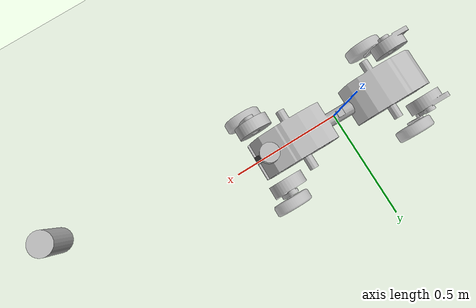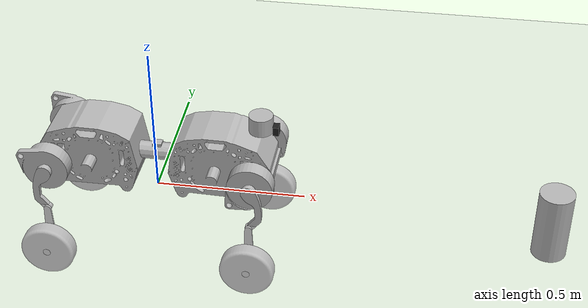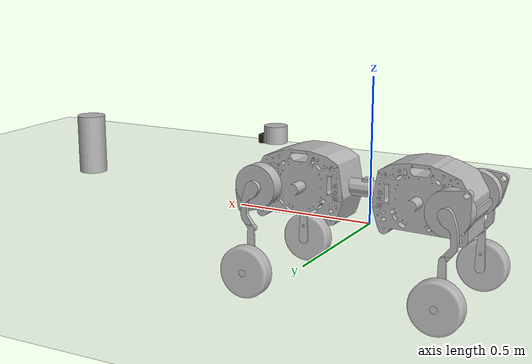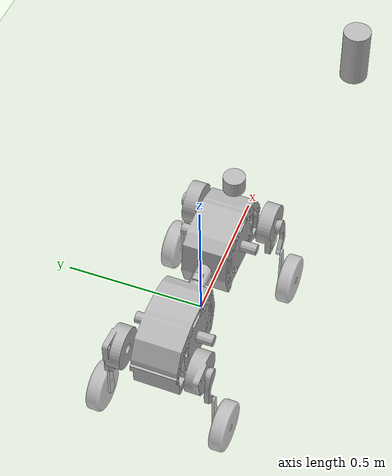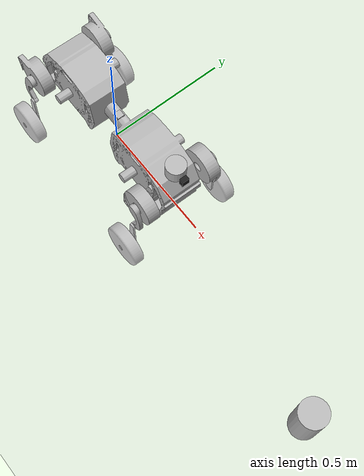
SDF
<sdf version="1.7">
 <world name="default">
  <light name="sun" type="directional">
   <pose>0 0 10 0 -0 0</pose>
   <diffuse>0.8 0.8 0.8 1</diffuse>
   <specular>0.2 0.2 0.2 1</specular>
   <attenuation>
    <range>1000</range>
    <constant>0.9</constant>
    <linear>0.01</linear>
    <quadratic>0.001</quadratic>
   </attenuation>
   <direction>-0.5 0.1 -0.9</direction>
   <spot><inner_angle>0</inner_angle><outer_angle>0</outer_angle><falloff>0</falloff></spot>
  </light>
  <model name="ground_plane">
   <static>1</static>
   <link name="link">
    <collision name="collision">
     <geometry><plane><normal>0 0 1</normal><size>100 100</size></plane></geometry>
     <surface><friction><ode><mu>100</mu><mu2>50</mu2></ode></friction></surface>
    </collision>
    <visual name="visual">
     <cast_shadows>0</cast_shadows>
     <geometry><plane><normal>0 0 1</normal><size>100 100</size></plane></geometry>
     <material>
      <script><uri>file://media/materials/scripts/gazebo.material</uri><name>Gazebo/Grey</name></script>
     </material>
    </visual>
   </link>
  </model>
  <gravity>0 0 -9.8</gravity>
  <magnetic_field>6e-06 2.3e-05 -4.2e-05</magnetic_field>
  <atmosphere type="adiabatic"/>
  <physics type="ode">
   <max_step_size>0.001</max_step_size>
   <real_time_factor>1</real_time_factor>
   <real_time_update_rate>1000</real_time_update_rate>
  </physics>
  <scene><ambient>0.4 0.4 0.4 1</ambient><background>0.7 0.7 0.7 1</background><shadows>1</shadows></scene>
  <spherical_coordinates>
   <surface_model>EARTH_WGS84</surface_model>
   <latitude_deg>0</latitude_deg>
   <longitude_deg>0</longitude_deg>
   <elevation>0</elevation>
   <heading_deg>0</heading_deg>
  </spherical_coordinates>
  <model name="xingtian">
   <link name="dummy">
    <inertial>
     <pose>-6e-06 0 0.000503 0 -0 0</pose>
     <mass>17.0493</mass>
     <inertia>
      <ixx>0.118823</ixx>
      <ixy>3.25903e-06</ixy>
      <ixz>-1.50677e-05</ixz>
      <iyy>2.09523</iyy>
      <iyz>-8.25373e-09</iyz>
      <izz>2.0615</izz>
     </inertia>
    </inertial>
    <collision name="dummy_fixed_joint_lump__base_link_collision">
     <geometry>
      <mesh>
       <scale>1 1 1</scale>
       <uri>/home/zyz/robot_leg/demo_xingtian_ws/src/xingtian/meshes/base_link.STL</uri>
      </mesh>
     </geometry>
    </collision>
    <collision name="dummy_fixed_joint_lump__imu_link_collision_1">
     <pose>0 0 0.03503 0 -0 0</pose>
     <geometry>
      <mesh>
       <scale>1 1 1</scale>
       <uri>/home/zyz/robot_leg/demo_xingtian_ws/src/xingtian/meshes/imu_link.STL</uri>
      </mesh>
     </geometry>
    </collision>
    <visual name="dummy_fixed_joint_lump__base_link_visual">
     <geometry>
      <mesh>
       <scale>1 1 1</scale>
       <uri>/home/zyz/robot_leg/demo_xingtian_ws/src/xingtian/meshes/base_link.STL</uri>
      </mesh>
     </geometry>
     <material>
      <script><name>Gazebo/DarkGery</name><uri>file://media/materials/scripts/gazebo.material</uri></script>
     </material>
    </visual>
    <visual name="dummy_fixed_joint_lump__camera_link_visual_1">
     <pose>0.4 0 0.13 0 -0 0</pose>
     <geometry><box><size>0.02 0.03 0.03</size></box></geometry>
     <material>
      <script><name>Gazebo/Black</name><uri>file://media/materials/scripts/gazebo.material</uri></script>
     </material>
    </visual>
    <visual name="dummy_fixed_joint_lump__imu_link_visual_2">
     <pose>0 0 0.03503 0 -0 0</pose>
     <geometry>
      <mesh>
       <scale>1 1 1</scale>
       <uri>/home/zyz/robot_leg/demo_xingtian_ws/src/xingtian/meshes/imu_link.STL</uri>
      </mesh>
     </geometry>
    </visual>
    <visual name="dummy_fixed_joint_lump__laser_link_visual_3">
     <pose>0.35 0 0.15 0 -0 0</pose>
     <geometry><cylinder><length>0.06</length><radius>0.04</radius></cylinder></geometry>
    </visual>
    <sensor name="camera1" type="camera">
     <update_rate>30</update_rate>
     <camera name="head">
      <horizontal_fov>1.39626</horizontal_fov>
      <image><width>800</width><height>800</height><format>R8G8B8</format></image>
      <clip><near>0.02</near><far>300</far></clip>
      <noise><type>gaussian</type><mean>0</mean><stddev>0.007</stddev></noise>
     </camera>
     <plugin name="camera_controller" filename="/opt/ros/noetic/lib/libgazebo_ros_camera.so">
      <alwaysOn>1</alwaysOn>
      <updateRate>0.0</updateRate>
      <cameraName>xingtian/camera1</cameraName>
      <imageTopicName>image_raw</imageTopicName>
      <cameraInfoTopicName>camera_info</cameraInfoTopicName>
      <frameName>camera_link</frameName>
      <hackBaseline>0.07</hackBaseline>
      <distortionK1>0.0</distortionK1>
      <distortionK2>0.0</distortionK2>
      <distortionK3>0.0</distortionK3>
      <distortionT1>0.0</distortionT1>
      <distortionT2>0.0</distortionT2>
      <robotNamespace>/</robotNamespace>
     </plugin>
     <pose>0.4 0 0.13 0 -0 0</pose>
    </sensor>
    <sensor name="imu_sensor" type="imu">
     <always_on>1</always_on>
     <update_rate>100</update_rate>
     <visualize>1</visualize>
     <topic>__default_topic__</topic>
     <plugin name="imu_plugin" filename="/opt/ros/noetic/lib/libgazebo_ros_imu_sensor.so">
      <topicName>imu</topicName>
      <bodyName>imu_link</bodyName>
      <updateRateHZ>10.0</updateRateHZ>
      <gaussianNoise>0.0</gaussianNoise>
      <xyzOffset>0 0 0</xyzOffset>
      <rpyOffset>0 0 0</rpyOffset>
      <frameName>imu_link</frameName>
      <initialOrientationAsReference>0</initialOrientationAsReference>
      <robotNamespace>/</robotNamespace>
     </plugin>
     <pose>0 0 0.03503 0 -0 0</pose>
    </sensor>
    <sensor name="head_hokuyo_sensor" type="gpu_ray">
     <visualize>0</visualize>
     <update_rate>40</update_rate>
     <ray>
      <scan>
       <horizontal>
        <samples>720</samples>
        <resolution>1</resolution>
        <min_angle>-1.5708</min_angle>
        <max_angle>1.5708</max_angle>
       </horizontal>
       <vertical><samples>1</samples><min_angle>0</min_angle><max_angle>0</max_angle></vertical>
      </scan>
      <range><min>0.1</min><max>30</max><resolution>0.01</resolution></range>
      <noise><type>gaussian</type><mean>0</mean><stddev>0.01</stddev></noise>
     </ray>
     <plugin name="gazebo_ros_head_hokuyo_controller" filename="libgazebo_ros_gpu_laser.so">
      <topicName>/xingtian/laser/scan</topicName>
      <frameName>hokuyo_link</frameName>
      <robotNamespace>/</robotNamespace>
     </plugin>
     <pose>0.35 0 0.15 0 -0 0</pose>
    </sensor>
   </link>
   <joint name="yht_joint4" type="revolute">
    <pose relative_to="dummy">-0.33864 -0.0825 -0.000883 0 -0 0</pose>
    <parent>dummy</parent>
    <child>yht_yao</child>
    <axis>
     <xyz>0 -1 0</xyz>
     <limit><lower>-3.14</lower><upper>3.14</upper><effort>20000</effort><velocity>3</velocity></limit>
     <dynamics><spring_reference>0</spring_reference><spring_stiffness>0</spring_stiffness></dynamics>
    </axis>
   </joint>
   <link name="yht_yao">
    <pose relative_to="yht_joint4">0 0 0 0 -0 0</pose>
    <inertial>
     <pose>-0.00194 -0.05851 0.001335 0 -0 0</pose>
     <mass>2.36316</mass>
     <inertia>
      <ixx>0.00418063</ixx>
      <ixy>-9.39193e-05</ixy>
      <ixz>0.00019498</ixz>
      <iyy>0.00741887</iyy>
      <iyz>6.4645e-05</iyz>
      <izz>0.00432962</izz>
     </inertia>
    </inertial>
    <collision name="yht_yao_collision">
     <geometry>
      <mesh>
       <scale>1 1 1</scale>
       <uri>/home/zyz/robot_leg/demo_xingtian_ws/src/xingtian/meshes/yht_yao.STL</uri>
      </mesh>
     </geometry>
     <surface>
      <contact><ode><kp>500000</kp><kd>10</kd><max_vel>1</max_vel><min_depth>0.001</min_depth></ode></contact>
      <friction><ode><mu>0.5</mu><mu2>0.5</mu2><fdir1>1 0 0</fdir1></ode></friction>
     </surface>
    </collision>
    <visual name="yht_yao_visual">
     <geometry>
      <mesh>
       <scale>1 1 1</scale>
       <uri>/home/zyz/robot_leg/demo_xingtian_ws/src/xingtian/meshes/yht_yao.STL</uri>
      </mesh>
     </geometry>
    </visual>
   </link>
   <joint name="yht_joint3" type="revolute">
    <pose relative_to="yht_yao">0 -0.105 0 0 -0 0</pose>
    <parent>yht_yao</parent>
    <child>yht_qubing</child>
    <axis>
     <xyz>0 1 0</xyz>
     <limit><lower>-3.14</lower><upper>3.14</upper><effort>20000</effort><velocity>3</velocity></limit>
     <dynamics><spring_reference>0</spring_reference><spring_stiffness>0</spring_stiffness></dynamics>
    </axis>
   </joint>
   <link name="yht_qubing">
    <pose relative_to="yht_joint3">0 0 0 0 -0 0</pose>
    <inertial>
     <pose>-0.00989 0.015219 -0.034594 0 -0 0</pose>
     <mass>0.343012</mass>
     <inertia>
      <ixx>0.000830322</ixx>
      <ixy>-2.44911e-05</ixy>
      <ixz>-0.000124823</ixz>
      <iyy>0.000866213</iyy>
      <iyz>-8.56665e-05</iyz>
      <izz>0.000143539</izz>
     </inertia>
    </inertial>
    <collision name="yht_qubing_collision">
     <geometry>
      <mesh>
       <scale>1 1 1</scale>
       <uri>/home/zyz/robot_leg/demo_xingtian_ws/src/xingtian/meshes/yht_qubing.STL</uri>
      </mesh>
     </geometry>
     <surface>
      <contact><ode><kp>500000</kp><kd>10</kd><max_vel>1</max_vel><min_depth>0.001</min_depth></ode></contact>
      <friction><ode><mu>0.5</mu><mu2>0.5</mu2><fdir1>1 0 0</fdir1></ode></friction>
     </surface>
    </collision>
    <visual name="yht_qubing_visual">
     <geometry>
      <mesh>
       <scale>1 1 1</scale>
       <uri>/home/zyz/robot_leg/demo_xingtian_ws/src/xingtian/meshes/yht_qubing.STL</uri>
      </mesh>
     </geometry>
    </visual>
   </link>
   <joint name="yht_joint2" type="revolute">
    <pose relative_to="yht_qubing">0 0.016 -0.14 0 -0 0</pose>
    <parent>yht_qubing</parent>
    <child>yht_dianjizhou</child>
    <axis>
     <xyz>0 1 0</xyz>
     <limit><lower>-3.14</lower><upper>3.14</upper><effort>20000</effort><velocity>3</velocity></limit>
     <dynamics><spring_reference>0</spring_reference><spring_stiffness>0</spring_stiffness></dynamics>
    </axis>
   </joint>
   <link name="yht_dianjizhou">
    <pose relative_to="yht_joint2">0 0 0 0 -0 0</pose>
    <inertial>
     <pose>-0 -0.033337 -0.101527 0 -0 0</pose>
     <mass>0.0711999</mass>
     <inertia>
      <ixx>0.000208257</ixx>
      <ixy>-1.80301e-10</ixy>
      <ixz>-7.68244e-10</ixz>
      <iyy>0.000184278</iyy>
      <iyz>-4.12845e-05</iyz>
      <izz>3.23489e-05</izz>
     </inertia>
    </inertial>
    <collision name="yht_dianjizhou_collision">
     <geometry>
      <mesh>
       <scale>1 1 1</scale>
       <uri>/home/zyz/robot_leg/demo_xingtian_ws/src/xingtian/meshes/yht_dianjizhou.STL</uri>
      </mesh>
     </geometry>
     <surface>
      <contact><ode><kp>500000</kp><kd>10</kd><max_vel>1</max_vel><min_depth>0.001</min_depth></ode></contact>
      <friction><ode><mu>0.5</mu><mu2>0.5</mu2><fdir1>1 0 0</fdir1></ode></friction>
     </surface>
    </collision>
    <visual name="yht_dianjizhou_visual">
     <geometry>
      <mesh>
       <scale>1 1 1</scale>
       <uri>/home/zyz/robot_leg/demo_xingtian_ws/src/xingtian/meshes/yht_dianjizhou.STL</uri>
      </mesh>
     </geometry>
    </visual>
   </link>
   <joint name="yht_joint1" type="revolute">
    <pose relative_to="yht_dianjizhou">0 -0.029 -0.14 0 -0 0</pose>
    <parent>yht_dianjizhou</parent>
    <child>yht_wheel</child>
    <axis>
     <xyz>0 1 0</xyz>
     <limit><lower>-1e+16</lower><upper>1e+16</upper></limit>
     <dynamics><spring_reference>0</spring_reference><spring_stiffness>0</spring_stiffness></dynamics>
    </axis>
   </joint>
   <link name="yht_wheel">
    <pose relative_to="yht_joint1">0 0 0 0 -0 0</pose>
    <inertial>
     <pose>0 -0.026 0 0 -0 0</pose>
     <mass>3.44066</mass>
     <inertia>
      <ixx>0.00775154</ixx>
      <ixy>6.89009e-18</ixy>
      <ixz>4.30388e-19</ixz>
      <iyy>0.0139963</iyy>
      <iyz>-1.77602e-18</iyz>
      <izz>0.00775154</izz>
     </inertia>
    </inertial>
    <collision name="yht_wheel_collision">
     <geometry>
      <mesh>
       <scale>1 1 1</scale>
       <uri>/home/zyz/robot_leg/demo_xingtian_ws/src/xingtian/meshes/yht_wheel.STL</uri>
      </mesh>
     </geometry>
     <surface>
      <contact><ode><kp>500000</kp><kd>10</kd><max_vel>2</max_vel><min_depth>0.001</min_depth></ode></contact>
      <friction><ode><mu>0.5</mu><mu2>0.5</mu2><fdir1>1 0 0</fdir1></ode></friction>
     </surface>
    </collision>
    <visual name="yht_wheel_visual">
     <geometry>
      <mesh>
       <scale>1 1 1</scale>
       <uri>/home/zyz/robot_leg/demo_xingtian_ws/src/xingtian/meshes/yht_wheel.STL</uri>
      </mesh>
     </geometry>
    </visual>
   </link>
   <joint name="yqt_joint4" type="revolute">
    <pose relative_to="dummy">0.33864 -0.0825 -0.000883 0 -0 0</pose>
    <parent>dummy</parent>
    <child>yqt_yao</child>
    <axis>
     <xyz>0 -1 0</xyz>
     <limit><lower>-3.14</lower><upper>3.14</upper><effort>20000</effort><velocity>3</velocity></limit>
     <dynamics><spring_reference>0</spring_reference><spring_stiffness>0</spring_stiffness></dynamics>
    </axis>
   </joint>
   <link name="yqt_yao">
    <pose relative_to="yqt_joint4">0 0 0 0 -0 0</pose>
    <inertial>
     <pose>-0.00168 -0.05851 -0.00165 0 -0 0</pose>
     <mass>2.36316</mass>
     <inertia>
      <ixx>0.00425129</ixx>
      <ixy>-8.13523e-05</ixy>
      <ixz>-0.000208692</ixz>
      <iyy>0.00741887</iyy>
      <iyz>-7.9885e-05</iyz>
      <izz>0.00425896</izz>
     </inertia>
    </inertial>
    <collision name="yqt_yao_collision">
     <geometry>
      <mesh>
       <scale>1 1 1</scale>
       <uri>/home/zyz/robot_leg/demo_xingtian_ws/src/xingtian/meshes/yqt_yao.STL</uri>
      </mesh>
     </geometry>
     <surface>
      <contact><ode><kp>500000</kp><kd>10</kd><max_vel>1</max_vel><min_depth>0.001</min_depth></ode></contact>
      <friction><ode><mu>0.5</mu><mu2>0.5</mu2><fdir1>1 0 0</fdir1></ode></friction>
     </surface>
    </collision>
    <visual name="yqt_yao_visual">
     <geometry>
      <mesh>
       <scale>1 1 1</scale>
       <uri>/home/zyz/robot_leg/demo_xingtian_ws/src/xingtian/meshes/yqt_yao.STL</uri>
      </mesh>
     </geometry>
    </visual>
   </link>
   <joint name="yqt_joint3" type="revolute">
    <pose relative_to="yqt_yao">0 -0.105 0 0 -0 0</pose>
    <parent>yqt_yao</parent>
    <child>yqt_qubing</child>
    <axis>
     <xyz>0 1 0</xyz>
     <limit><lower>-3.14</lower><upper>3.14</upper><effort>20000</effort><velocity>3</velocity></limit>
     <dynamics><spring_reference>0</spring_reference><spring_stiffness>0</spring_stiffness></dynamics>
    </axis>
   </joint>
   <link name="yqt_qubing">
    <pose relative_to="yqt_joint3">0 0 0 0 -0 0</pose>
    <inertial>
     <pose>0.00989 0.015219 -0.034594 0 -0 0</pose>
     <mass>0.343012</mass>
     <inertia>
      <ixx>0.000830323</ixx>
      <ixy>2.44907e-05</ixy>
      <ixz>0.00012482</ixz>
      <iyy>0.000866213</iyy>
      <iyz>-8.56666e-05</iyz>
      <izz>0.000143538</izz>
     </inertia>
    </inertial>
    <collision name="yqt_qubing_collision">
     <geometry>
      <mesh>
       <scale>1 1 1</scale>
       <uri>/home/zyz/robot_leg/demo_xingtian_ws/src/xingtian/meshes/yqt_qubing.STL</uri>
      </mesh>
     </geometry>
     <surface>
      <contact><ode><kp>500000</kp><kd>10</kd><max_vel>1</max_vel><min_depth>0.001</min_depth></ode></contact>
      <friction><ode><mu>0.5</mu><mu2>0.5</mu2><fdir1>1 0 0</fdir1></ode></friction>
     </surface>
    </collision>
    <visual name="yqt_qubing_visual">
     <geometry>
      <mesh>
       <scale>1 1 1</scale>
       <uri>/home/zyz/robot_leg/demo_xingtian_ws/src/xingtian/meshes/yqt_qubing.STL</uri>
      </mesh>
     </geometry>
    </visual>
   </link>
   <joint name="yqt_joint2" type="revolute">
    <pose relative_to="yqt_qubing">0 0.016 -0.14 0 -0 0</pose>
    <parent>yqt_qubing</parent>
    <child>yqt_dianjizhou</child>
    <axis>
     <xyz>0 1 0</xyz>
     <limit><lower>-3.14</lower><upper>3.14</upper><effort>20000</effort><velocity>3</velocity></limit>
     <dynamics><spring_reference>0</spring_reference><spring_stiffness>0</spring_stiffness></dynamics>
    </axis>
   </joint>
   <link name="yqt_dianjizhou">
    <pose relative_to="yqt_joint2">0 0 0 0 -0 0</pose>
    <inertial>
     <pose>0 -0.033337 -0.101527 0 -0 0</pose>
     <mass>0.0711999</mass>
     <inertia>
      <ixx>0.000208257</ixx>
      <ixy>9.53214e-12</ixy>
      <ixz>4.06154e-11</ixz>
      <iyy>0.000184278</iyy>
      <iyz>-4.12845e-05</iyz>
      <izz>3.23489e-05</izz>
     </inertia>
    </inertial>
    <collision name="yqt_dianjizhou_collision">
     <geometry>
      <mesh>
       <scale>1 1 1</scale>
       <uri>/home/zyz/robot_leg/demo_xingtian_ws/src/xingtian/meshes/yqt_dianjizhou.STL</uri>
      </mesh>
     </geometry>
     <surface>
      <contact><ode><kp>500000</kp><kd>10</kd><max_vel>1</max_vel><min_depth>0.001</min_depth></ode></contact>
      <friction><ode><mu>0.5</mu><mu2>0.5</mu2><fdir1>1 0 0</fdir1></ode></friction>
     </surface>
    </collision>
    <visual name="yqt_dianjizhou_visual">
     <geometry>
      <mesh>
       <scale>1 1 1</scale>
       <uri>/home/zyz/robot_leg/demo_xingtian_ws/src/xingtian/meshes/yqt_dianjizhou.STL</uri>
      </mesh>
     </geometry>
    </visual>
   </link>
   <joint name="yqt_joint1" type="revolute">
    <pose relative_to="yqt_dianjizhou">0 -0.029 -0.14 0 -0 0</pose>
    <parent>yqt_dianjizhou</parent>
    <child>yqt_wheel</child>
    <axis>
     <xyz>0 1 0</xyz>
     <limit><lower>-1e+16</lower><upper>1e+16</upper></limit>
     <dynamics><spring_reference>0</spring_reference><spring_stiffness>0</spring_stiffness></dynamics>
    </axis>
   </joint>
   <link name="yqt_wheel">
    <pose relative_to="yqt_joint1">0 0 0 0 -0 0</pose>
    <inertial>
     <pose>0 -0.026 0 0 -0 0</pose>
     <mass>3.44066</mass>
     <inertia>
      <ixx>0.00775154</ixx>
      <ixy>-8.07781e-19</ixy>
      <ixz>-8.66148e-19</ixz>
      <iyy>0.0139963</iyy>
      <iyz>9.19191e-19</iyz>
      <izz>0.00775154</izz>
     </inertia>
    </inertial>
    <collision name="yqt_wheel_collision">
     <geometry>
      <mesh>
       <scale>1 1 1</scale>
       <uri>/home/zyz/robot_leg/demo_xingtian_ws/src/xingtian/meshes/yqt_wheel.STL</uri>
      </mesh>
     </geometry>
     <surface>
      <contact><ode><kp>500000</kp><kd>10</kd><max_vel>2</max_vel><min_depth>0.001</min_depth></ode></contact>
      <friction><ode><mu>0.5</mu><mu2>0.5</mu2><fdir1>1 0 0</fdir1></ode></friction>
     </surface>
    </collision>
    <visual name="yqt_wheel_visual">
     <geometry>
      <mesh>
       <scale>1 1 1</scale>
       <uri>/home/zyz/robot_leg/demo_xingtian_ws/src/xingtian/meshes/yqt_wheel.STL</uri>
      </mesh>
     </geometry>
    </visual>
   </link>
   <joint name="zht_joint4" type="revolute">
    <pose relative_to="dummy">-0.33864 0.0825 -0.000883 0 -0 0</pose>
    <parent>dummy</parent>
    <child>zht_yao</child>
    <axis>
     <xyz>0 1 0</xyz>
     <limit><lower>-3.14</lower><upper>3.14</upper><effort>200000</effort><velocity>3</velocity></limit>
     <dynamics><spring_reference>0</spring_reference><spring_stiffness>0</spring_stiffness></dynamics>
    </axis>
   </joint>
   <link name="zht_yao">
    <pose relative_to="zht_joint4">0 0 0 0 -0 0</pose>
    <inertial>
     <pose>-0.001558 0.05851 0.001766 0 -0 0</pose>
     <mass>2.36316</mass>
     <inertia>
      <ixx>0.00428106</ixx>
      <ixy>7.54397e-05</ixy>
      <ixz>0.00020711</ixz>
      <iyy>0.00741887</iyy>
      <iyz>-8.54907e-05</iyz>
      <izz>0.00422919</izz>
     </inertia>
    </inertial>
    <collision name="zht_yao_collision">
     <geometry>
      <mesh>
       <scale>1 1 1</scale>
       <uri>/home/zyz/robot_leg/demo_xingtian_ws/src/xingtian/meshes/zht_yao.STL</uri>
      </mesh>
     </geometry>
     <surface>
      <contact><ode><kp>500000</kp><kd>10</kd><max_vel>1</max_vel><min_depth>0.001</min_depth></ode></contact>
      <friction><ode><mu>0.5</mu><mu2>0.5</mu2><fdir1>1 0 0</fdir1></ode></friction>
     </surface>
    </collision>
    <visual name="zht_yao_visual">
     <geometry>
      <mesh>
       <scale>1 1 1</scale>
       <uri>/home/zyz/robot_leg/demo_xingtian_ws/src/xingtian/meshes/zht_yao.STL</uri>
      </mesh>
     </geometry>
    </visual>
   </link>
   <joint name="zht_joint3" type="revolute">
    <pose relative_to="zht_yao">0 0.105 0 0 -0 0</pose>
    <parent>zht_yao</parent>
    <child>zht_qubing</child>
    <axis>
     <xyz>0 1 0</xyz>
     <limit><lower>-3.14</lower><upper>3.14</upper><effort>200000</effort><velocity>3</velocity></limit>
     <dynamics><spring_reference>0</spring_reference><spring_stiffness>0</spring_stiffness></dynamics>
    </axis>
   </joint>
   <link name="zht_qubing">
    <pose relative_to="zht_joint3">0 0 0 0 -0 0</pose>
    <inertial>
     <pose>-0.00989 -0.015219 -0.034594 0 -0 0</pose>
     <mass>0.343012</mass>
     <inertia>
      <ixx>0.000830323</ixx>
      <ixy>2.44907e-05</ixy>
      <ixz>-0.00012482</ixz>
      <iyy>0.000866213</iyy>
      <iyz>8.56666e-05</iyz>
      <izz>0.000143538</izz>
     </inertia>
    </inertial>
    <collision name="zht_qubing_collision">
     <geometry>
      <mesh>
       <scale>1 1 1</scale>
       <uri>/home/zyz/robot_leg/demo_xingtian_ws/src/xingtian/meshes/zht_qubing.STL</uri>
      </mesh>
     </geometry>
     <surface>
      <contact><ode><kp>500000</kp><kd>10</kd><max_vel>1</max_vel><min_depth>0.001</min_depth></ode></contact>
      <friction><ode><mu>0.5</mu><mu2>0.5</mu2><fdir1>1 0 0</fdir1></ode></friction>
     </surface>
    </collision>
    <visual name="zht_qubing_visual">
     <geometry>
      <mesh>
       <scale>1 1 1</scale>
       <uri>/home/zyz/robot_leg/demo_xingtian_ws/src/xingtian/meshes/zht_qubing.STL</uri>
      </mesh>
     </geometry>
    </visual>
   </link>
   <joint name="zht_joint2" type="revolute">
    <pose relative_to="zht_qubing">0 -0.016 -0.14 0 -0 0</pose>
    <parent>zht_qubing</parent>
    <child>zht_dianjizhou</child>
    <axis>
     <xyz>0 1 0</xyz>
     <limit><lower>-3.14</lower><upper>3.14</upper><effort>200000</effort><velocity>3</velocity></limit>
     <dynamics><spring_reference>0</spring_reference><spring_stiffness>0</spring_stiffness></dynamics>
    </axis>
   </joint>
   <link name="zht_dianjizhou">
    <pose relative_to="zht_joint2">0 0 0 0 -0 0</pose>
    <inertial>
     <pose>-0 0.033337 -0.101527 0 -0 0</pose>
     <mass>0.0711999</mass>
     <inertia>
      <ixx>0.000208257</ixx>
      <ixy>9.53214e-12</ixy>
      <ixz>-4.06154e-11</ixz>
      <iyy>0.000184278</iyy>
      <iyz>4.12845e-05</iyz>
      <izz>3.23489e-05</izz>
     </inertia>
    </inertial>
    <collision name="zht_dianjizhou_collision">
     <geometry>
      <mesh>
       <scale>1 1 1</scale>
       <uri>/home/zyz/robot_leg/demo_xingtian_ws/src/xingtian/meshes/zht_dianjizhou.STL</uri>
      </mesh>
     </geometry>
     <surface>
      <contact><ode><kp>500000</kp><kd>10</kd><max_vel>1</max_vel><min_depth>0.001</min_depth></ode></contact>
      <friction><ode><mu>0.5</mu><mu2>0.5</mu2><fdir1>1 0 0</fdir1></ode></friction>
     </surface>
    </collision>
    <visual name="zht_dianjizhou_visual">
     <geometry>
      <mesh>
       <scale>1 1 1</scale>
       <uri>/home/zyz/robot_leg/demo_xingtian_ws/src/xingtian/meshes/zht_dianjizhou.STL</uri>
      </mesh>
     </geometry>
    </visual>
   </link>
   <joint name="zht_joint1" type="revolute">
    <pose relative_to="zht_dianjizhou">0 0.029 -0.14 0 -0 0</pose>
    <parent>zht_dianjizhou</parent>
    <child>zht_wheel</child>
    <axis>
     <xyz>0 -1 0</xyz>
     <limit><lower>-1e+16</lower><upper>1e+16</upper></limit>
     <dynamics><spring_reference>0</spring_reference><spring_stiffness>0</spring_stiffness></dynamics>
    </axis>
   </joint>
   <link name="zht_wheel">
    <pose relative_to="zht_joint1">0 0 0 0 -0 0</pose>
    <inertial>
     <pose>0 0.026 -0 0 -0 0</pose>
     <mass>3.44066</mass>
     <inertia>
      <ixx>0.00775154</ixx>
      <ixy>-7.1051e-18</ixy>
      <ixz>-4.99165e-19</ixz>
      <iyy>0.0139963</iyy>
      <iyz>3.5744e-18</iyz>
      <izz>0.00775154</izz>
     </inertia>
    </inertial>
    <collision name="zht_wheel_collision">
     <geometry>
      <mesh>
       <scale>1 1 1</scale>
       <uri>/home/zyz/robot_leg/demo_xingtian_ws/src/xingtian/meshes/zht_wheel.STL</uri>
      </mesh>
     </geometry>
     <surface>
      <contact><ode><kp>500000</kp><kd>10</kd><max_vel>2</max_vel><min_depth>0.001</min_depth></ode></contact>
      <friction><ode><mu>0.5</mu><mu2>0.5</mu2><fdir1>1 0 0</fdir1></ode></friction>
     </surface>
    </collision>
    <visual name="zht_wheel_visual">
     <geometry>
      <mesh>
       <scale>1 1 1</scale>
       <uri>/home/zyz/robot_leg/demo_xingtian_ws/src/xingtian/meshes/zht_wheel.STL</uri>
      </mesh>
     </geometry>
    </visual>
   </link>
   <joint name="zqt_joint4" type="revolute">
    <pose relative_to="dummy">0.33864 0.0825 -0.000883 0 -0 0</pose>
    <parent>dummy</parent>
    <child>zqt_yao</child>
    <axis>
     <xyz>0 1 0</xyz>
     <limit><lower>-3.14</lower><upper>3.14</upper><effort>20000</effort><velocity>3</velocity></limit>
     <dynamics><spring_reference>0</spring_reference><spring_stiffness>0</spring_stiffness></dynamics>
    </axis>
   </joint>
   <link name="zqt_yao">
    <pose relative_to="zqt_joint4">0 0 0 0 -0 0</pose>
    <inertial>
     <pose>0.001211 0.05851 -0.002019 0 -0 0</pose>
     <mass>2.36316</mass>
     <inertia>
      <ixx>0.0043534</ixx>
      <ixy>-5.86389e-05</ixy>
      <ixz>0.000184143</ixz>
      <iyy>0.00741887</iyy>
      <iyz>9.77819e-05</iyz>
      <izz>0.00415685</izz>
     </inertia>
    </inertial>
    <collision name="zqt_yao_collision">
     <geometry>
      <mesh>
       <scale>1 1 1</scale>
       <uri>/home/zyz/robot_leg/demo_xingtian_ws/src/xingtian/meshes/zqt_yao.STL</uri>
      </mesh>
     </geometry>
     <surface>
      <contact><ode><kp>500000</kp><kd>10</kd><max_vel>1</max_vel><min_depth>0.001</min_depth></ode></contact>
      <friction><ode><mu>0.5</mu><mu2>0.5</mu2><fdir1>1 0 0</fdir1></ode></friction>
     </surface>
    </collision>
    <visual name="zqt_yao_visual">
     <geometry>
      <mesh>
       <scale>1 1 1</scale>
       <uri>/home/zyz/robot_leg/demo_xingtian_ws/src/xingtian/meshes/zqt_yao.STL</uri>
      </mesh>
     </geometry>
    </visual>
   </link>
   <joint name="zqt_joint3" type="revolute">
    <pose relative_to="zqt_yao">0 0.105 0 0 -0 0</pose>
    <parent>zqt_yao</parent>
    <child>zqt_qubing</child>
    <axis>
     <xyz>0 1 0</xyz>
     <limit><lower>-3.14</lower><upper>3.14</upper><effort>20000</effort><velocity>3</velocity></limit>
     <dynamics><spring_reference>0</spring_reference><spring_stiffness>0</spring_stiffness></dynamics>
    </axis>
   </joint>
   <link name="zqt_qubing">
    <pose relative_to="zqt_joint3">0 0 0 0 -0 0</pose>
    <inertial>
     <pose>0.00989 -0.015219 -0.034594 0 -0 0</pose>
     <mass>0.343012</mass>
     <inertia>
      <ixx>0.000830322</ixx>
      <ixy>-2.44911e-05</ixy>
      <ixz>0.000124823</ixz>
      <iyy>0.000866213</iyy>
      <iyz>8.56665e-05</iyz>
      <izz>0.000143539</izz>
     </inertia>
    </inertial>
    <collision name="zqt_qubing_collision">
     <geometry>
      <mesh>
       <scale>1 1 1</scale>
       <uri>/home/zyz/robot_leg/demo_xingtian_ws/src/xingtian/meshes/zqt_qubing.STL</uri>
      </mesh>
     </geometry>
     <surface>
      <contact><ode><kp>500000</kp><kd>10</kd><max_vel>1</max_vel><min_depth>0.001</min_depth></ode></contact>
      <friction><ode><mu>0.5</mu><mu2>0.5</mu2><fdir1>1 0 0</fdir1></ode></friction>
     </surface>
    </collision>
    <visual name="zqt_qubing_visual">
     <geometry>
      <mesh>
       <scale>1 1 1</scale>
       <uri>/home/zyz/robot_leg/demo_xingtian_ws/src/xingtian/meshes/zqt_qubing.STL</uri>
      </mesh>
     </geometry>
    </visual>
   </link>
   <joint name="zqt_joint2" type="revolute">
    <pose relative_to="zqt_qubing">0 -0.016 -0.14 0 -0 0</pose>
    <parent>zqt_qubing</parent>
    <child>zqt_dianjizhou</child>
    <axis>
     <xyz>0 1 0</xyz>
     <limit><lower>-3.14</lower><upper>3.14</upper><effort>20000</effort><velocity>3</velocity></limit>
     <dynamics><spring_reference>0</spring_reference><spring_stiffness>0</spring_stiffness></dynamics>
    </axis>
   </joint>
   <link name="zqt_dianjizhou">
    <pose relative_to="zqt_joint2">0 0 0 0 -0 0</pose>
    <inertial>
     <pose>0 0.033337 -0.101527 0 -0 0</pose>
     <mass>0.0711999</mass>
     <inertia>
      <ixx>0.000208257</ixx>
      <ixy>-1.80301e-10</ixy>
      <ixz>7.68244e-10</ixz>
      <iyy>0.000184278</iyy>
      <iyz>4.12845e-05</iyz>
      <izz>3.23489e-05</izz>
     </inertia>
    </inertial>
    <collision name="zqt_dianjizhou_collision">
     <geometry>
      <mesh>
       <scale>1 1 1</scale>
       <uri>/home/zyz/robot_leg/demo_xingtian_ws/src/xingtian/meshes/zqt_dianjizhou.STL</uri>
      </mesh>
     </geometry>
     <surface>
      <contact><ode><kp>500000</kp><kd>10</kd><max_vel>1</max_vel><min_depth>0.001</min_depth></ode></contact>
      <friction><ode><mu>0.5</mu><mu2>0.5</mu2><fdir1>1 0 0</fdir1></ode></friction>
     </surface>
    </collision>
    <visual name="zqt_dianjizhou_visual">
     <geometry>
      <mesh>
       <scale>1 1 1</scale>
       <uri>/home/zyz/robot_leg/demo_xingtian_ws/src/xingtian/meshes/zqt_dianjizhou.STL</uri>
      </mesh>
     </geometry>
    </visual>
   </link>
   <joint name="zqt_joint1" type="revolute">
    <pose relative_to="zqt_dianjizhou">0 0.029 -0.14 0 -0 0</pose>
    <parent>zqt_dianjizhou</parent>
    <child>zqt_wheel</child>
    <axis>
     <xyz>0 -1 0</xyz>
     <limit><lower>-1e+16</lower><upper>1e+16</upper></limit>
     <dynamics><spring_reference>0</spring_reference><spring_stiffness>0</spring_stiffness></dynamics>
    </axis>
   </joint>
   <link name="zqt_wheel">
    <pose relative_to="zqt_joint1">0 0 0 0 -0 0</pose>
    <inertial>
     <pose>0 0.026 0 0 -0 0</pose>
     <mass>3.44066</mass>
     <inertia>
      <ixx>0.00775154</ixx>
      <ixy>4.55789e-19</ixy>
      <ixz>-5.11437e-20</ixz>
      <iyy>0.0139963</iyy>
      <iyz>5.56894e-19</iyz>
      <izz>0.00775154</izz>
     </inertia>
    </inertial>
    <collision name="zqt_wheel_collision">
     <geometry>
      <mesh>
       <scale>1 1 1</scale>
       <uri>/home/zyz/robot_leg/demo_xingtian_ws/src/xingtian/meshes/zqt_wheel.STL</uri>
      </mesh>
     </geometry>
     <surface>
      <contact><ode><kp>500000</kp><kd>10</kd><max_vel>2</max_vel><min_depth>0.001</min_depth></ode></contact>
      <friction><ode><mu>0.5</mu><mu2>0.5</mu2><fdir1>1 0 0</fdir1></ode></friction>
     </surface>
    </collision>
    <visual name="zqt_wheel_visual">
     <geometry>
      <mesh>
       <scale>1 1 1</scale>
       <uri>/home/zyz/robot_leg/demo_xingtian_ws/src/xingtian/meshes/zqt_wheel.STL</uri>
      </mesh>
     </geometry>
    </visual>
   </link>
   <plugin name="gazebo_ros_control" filename="/opt/ros/noetic/lib/libgazebo_ros_control.so">
    <robotNamespace>/xingtian</robotNamespace>
    <controlPeriod>0.001</controlPeriod>
    <robotSimType>gazebo_ros_control/DefaultRobotHWSim</robotSimType>
   </plugin>
   <plugin name="gazebo_ros_control" filename="libgazebo_ros_control.so">
    <robotNamespace>/xingtian</robotNamespace>
   </plugin>
   <frame name="camera_joint" attached_to="base_link"><pose>0.4 0 0.13 0 -0 0</pose></frame>
   <frame name="camera_link" attached_to="camera_joint"/>
   <frame name="imu_joint" attached_to="base_link"><pose>0 0 0.03503 0 -0 0</pose></frame>
   <frame name="imu_link" attached_to="imu_joint"/>
   <frame name="laser_joint" attached_to="base_link"><pose>0.35 0 0.15 0 -0 0</pose></frame>
   <frame name="laser_link" attached_to="laser_joint"/>
   <frame name="dummy_joint" attached_to="dummy"/>
   <frame name="base_link" attached_to="dummy_joint"/>
   <pose>0.006101 0.0135 0.126706 3e-06 0 -0.014635</pose>
  </model>
  <model name="beer">
   <link name="link">
    <pose>0 0 0.115 0 -0 0</pose>
    <inertial>
     <mass>0.39</mass>
     <inertia><ixx>0.00058</ixx><ixy>0</ixy><ixz>0</ixz><iyy>0.00058</iyy><iyz>0</iyz><izz>0.00019</izz></inertia>
    </inertial>
    <collision name="collision">
     <geometry><cylinder><radius>0.055</radius><length>0.23</length></cylinder></geometry>
    </collision>
    <visual name="visual">
     <geometry><cylinder><radius>0.055</radius><length>0.23</length></cylinder></geometry>
     <material>
      <script>
       <uri>model://beer/materials/scripts</uri>
       <uri>model://beer/materials/textures</uri>
       <name>Beer/Diffuse</name>
      </script>
     </material>
    </visual>
   </link>
   <pose>1.29834 -0.163632 -2e-06 1e-06 -0 -3e-06</pose>
  </model>
 </world>
</sdf>
